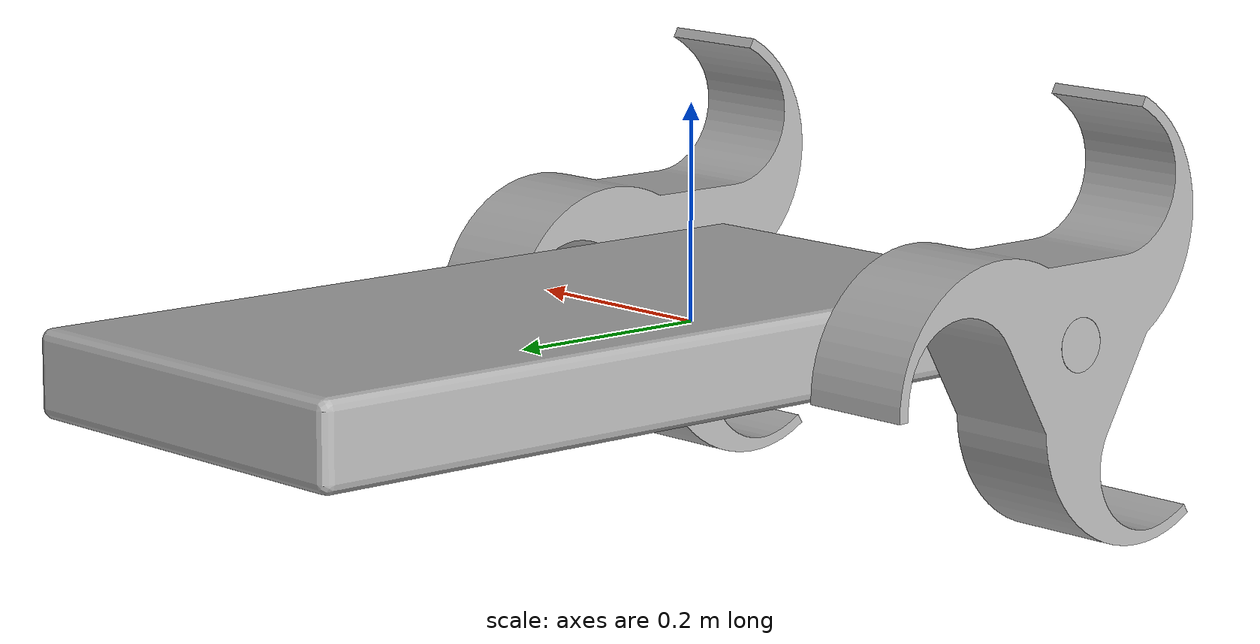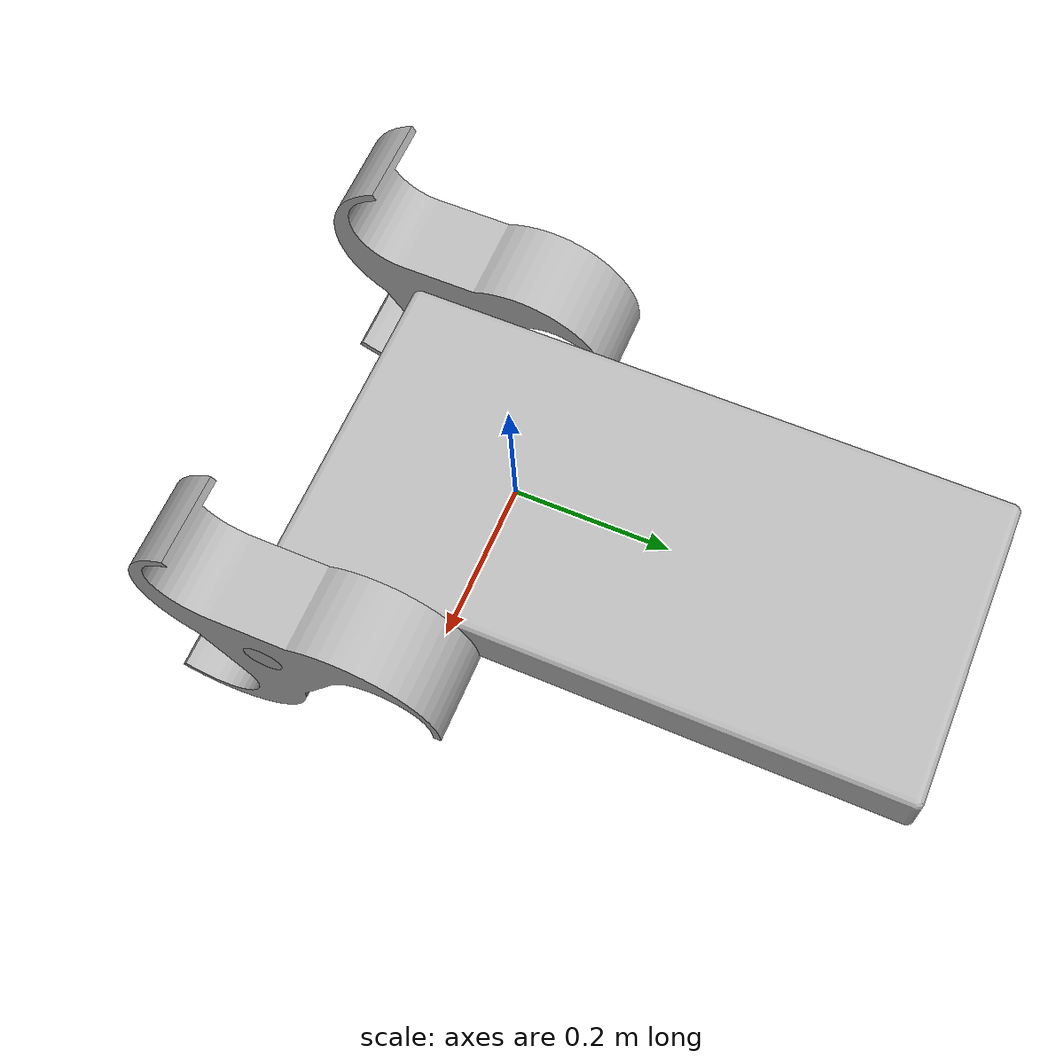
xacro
<?xml version="1.0" ?>
<robot name="not_splited_pih2" xmlns:xacro="http://www.ros.org/wiki/xacro">

<xacro:include filename="$(find not_splited_pih2_description)/urdf/materials.xacro" />
<xacro:include filename="$(find not_splited_pih2_description)/urdf/not_splited_pih2.trans" />
<xacro:include filename="$(find not_splited_pih2_description)/urdf/not_splited_pih2.gazebo" />
<link name="base_link">
  <inertial>
    <origin xyz="0.0 0.0 0.0" rpy="0 0 0"/>
    <mass value="9.556332153138449"/>
    <inertia ixx="0.002986" iyy="0.307614" izz="0.307614" ixy="0.0" iyz="0.0" ixz="0.0"/>
  </inertial>
  <visual>
    <origin xyz="0 0 0" rpy="0 0 0"/>
    <geometry>
      <mesh filename="package://not_splited_pih2_description/meshes/base_link.stl" scale="0.001 0.001 0.001"/>
    </geometry>
    <material name="silver"/>
  </visual>
  <collision>
    <origin xyz="0 0 0" rpy="0 0 0"/>
    <geometry>
      <mesh filename="package://not_splited_pih2_description/meshes/base_link.stl" scale="0.001 0.001 0.001"/>
    </geometry>
  </collision>
</link>

<link name="l_wheel_1">
  <inertial>
    <origin xyz="0.05499999999999999 5.431956309404092e-16 -1.221245327087672e-17" rpy="0 0 0"/>
    <mass value="4.420260171319266"/>
    <inertia ixx="0.058314" iyy="0.033614" izz="0.033614" ixy="0.0" iyz="-0.0" ixz="-0.0"/>
  </inertial>
  <visual>
    <origin xyz="0.31 -0.0 -0.0" rpy="0 0 0"/>
    <geometry>
      <mesh filename="package://not_splited_pih2_description/meshes/l_wheel_1.stl" scale="0.001 0.001 0.001"/>
    </geometry>
    <material name="silver"/>
  </visual>
  <collision>
    <origin xyz="0.31 -0.0 -0.0" rpy="0 0 0"/>
    <geometry>
      <mesh filename="package://not_splited_pih2_description/meshes/l_wheel_1.stl" scale="0.001 0.001 0.001"/>
    </geometry>
  </collision>
</link>

<link name="r_wheel_1">
  <inertial>
    <origin xyz="-0.05499999999999999 6.142499045164193e-16 1.221245327087672e-17" rpy="0 0 0"/>
    <mass value="4.420260171319266"/>
    <inertia ixx="0.058314" iyy="0.033614" izz="0.033614" ixy="0.0" iyz="-0.0" ixz="-0.0"/>
  </inertial>
  <visual>
    <origin xyz="-0.31 -0.0 -0.0" rpy="0 0 0"/>
    <geometry>
      <mesh filename="package://not_splited_pih2_description/meshes/r_wheel_1.stl" scale="0.001 0.001 0.001"/>
    </geometry>
    <material name="silver"/>
  </visual>
  <collision>
    <origin xyz="-0.31 -0.0 -0.0" rpy="0 0 0"/>
    <geometry>
      <mesh filename="package://not_splited_pih2_description/meshes/r_wheel_1.stl" scale="0.001 0.001 0.001"/>
    </geometry>
  </collision>
</link>

<link name="body_link_1">
  <inertial>
    <origin xyz="-2.3560069593074888e-17 0.3714442886642588 0.0" rpy="0 0 0"/>
    <mass value="193.94260970478055"/>
    <inertia ixx="9.919255" iyy="2.675932" izz="12.385095" ixy="-0.0" iyz="0.0" ixz="0.0"/>
  </inertial>
  <visual>
    <origin xyz="-0.0 -0.0 -0.0" rpy="0 0 0"/>
    <geometry>
      <mesh filename="package://not_splited_pih2_description/meshes/body_link_1.stl" scale="0.001 0.001 0.001"/>
    </geometry>
    <material name="silver"/>
  </visual>
  <collision>
    <origin xyz="-0.0 -0.0 -0.0" rpy="0 0 0"/>
    <geometry>
      <mesh filename="package://not_splited_pih2_description/meshes/body_link_1.stl" scale="0.001 0.001 0.001"/>
    </geometry>
  </collision>
</link>

<joint name="Rev8" type="continuous">
  <origin xyz="-0.31 0.0 0.0" rpy="0 0 0"/>
  <parent link="base_link"/>
  <child link="l_wheel_1"/>
  <axis xyz="-1.0 0.0 0.0"/>
</joint>

<joint name="Rev9" type="continuous">
  <origin xyz="0.31 0.0 0.0" rpy="0 0 0"/>
  <parent link="base_link"/>
  <child link="r_wheel_1"/>
  <axis xyz="1.0 0.0 0.0"/>
</joint>

<joint name="Rev10" type="continuous">
  <origin xyz="0.0 0.0 0.0" rpy="0 0 0"/>
  <parent link="base_link"/>
  <child link="body_link_1"/>
  <axis xyz="1.0 0.0 0.0"/>
</joint>

</robot>

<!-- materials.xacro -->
<robot name="not_splited_pih2" xmlns:xacro="http://www.ros.org/wiki/xacro" >

<material name="silver">
  <color rgba="0.700 0.700 0.700 1.000"/>
</material>

</robot>

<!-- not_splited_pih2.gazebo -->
<robot name="not_splited_pih2" xmlns:xacro="http://www.ros.org/wiki/xacro" >

<xacro:property name="body_color" value="Gazebo/Silver" />

<gazebo>
  <plugin name="control" filename="libgazebo_ros_control.so"/>
</gazebo>
<gazebo reference="base_link">
  <material>${body_color}</material>
  <mu1>0.2</mu1>
  <mu2>0.2</mu2>
  <selfCollide>true</selfCollide>
  <gravity>true</gravity>
</gazebo>

<gazebo reference="l_wheel_1">
  <material>${body_color}</material>
  <mu1>0.2</mu1>
  <mu2>0.2</mu2>
  <selfCollide>true</selfCollide>
</gazebo>

<gazebo reference="r_wheel_1">
  <material>${body_color}</material>
  <mu1>0.2</mu1>
  <mu2>0.2</mu2>
  <selfCollide>true</selfCollide>
</gazebo>

<gazebo reference="body_link_1">
  <material>${body_color}</material>
  <mu1>0.2</mu1>
  <mu2>0.2</mu2>
  <selfCollide>true</selfCollide>
</gazebo>

</robot>
